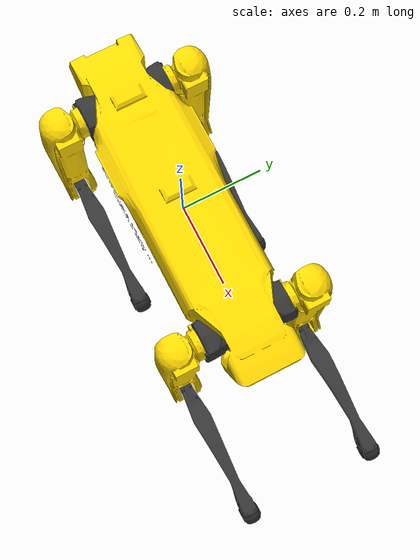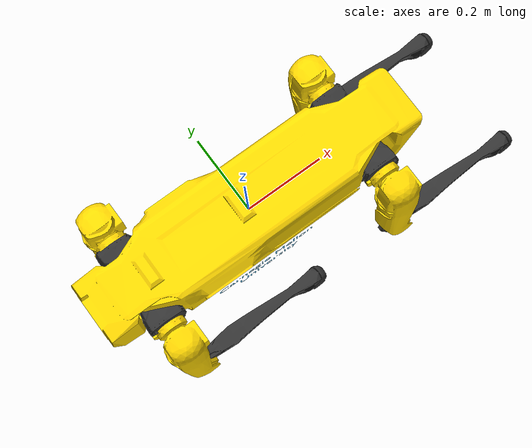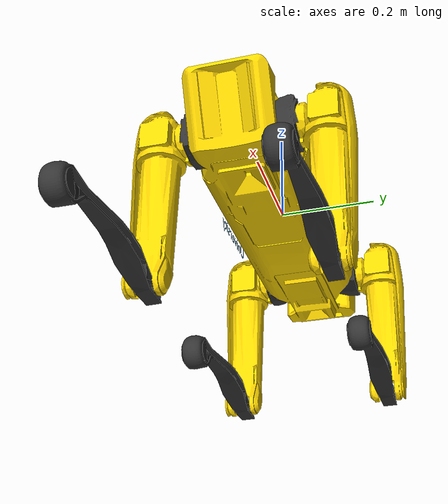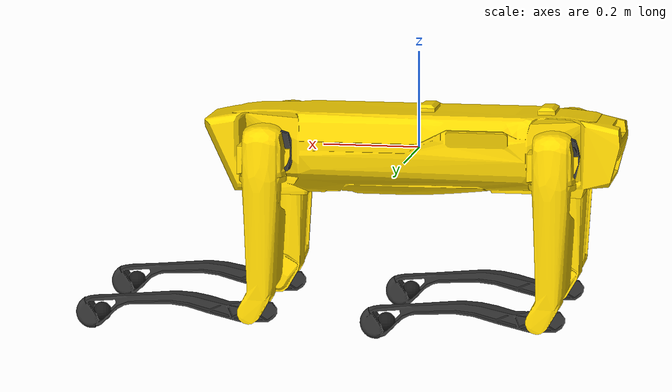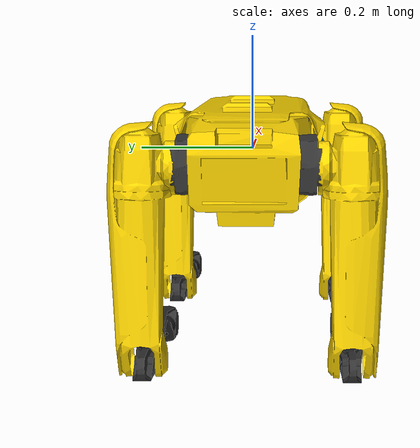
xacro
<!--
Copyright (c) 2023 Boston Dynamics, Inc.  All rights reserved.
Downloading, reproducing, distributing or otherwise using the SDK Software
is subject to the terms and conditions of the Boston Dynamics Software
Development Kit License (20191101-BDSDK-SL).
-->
<?xml version="1.0" encoding="utf-8"?>
<robot name="spot" xmlns:xacro="http://www.ros.org/wiki/xacro">
  <!-- Define materials -->
  <material name="gray">
    <color rgba="0.2 0.2 0.2 1.0"/>
  </material>
  <material name="gold">
    <color rgba="1 0.8431 0 1"/>
  </material>
  <material name="darkgray">
    <color rgba="0.1 0.1 0.1 1.0"/>
  </material>
  <material name="silver">
    <color rgba="0.3 0.3 0.3 1.0"/>
  </material>
  <material name="red">
    <color rgba="0.8 0.0 0.2 1.0"/>
  </material>
  <material name="scots-rose">
    <color rgba="0.937 0.2 0.251 1.0"/>
  </material>
  <!-- Robot Base Link -->
  <link name="body">
    <visual>
      <geometry>
        <mesh filename="package://spot_description/models/spot/meshes/base_link_0_geom_visual_mesh.stl"/>
      </geometry>
      <material name="gold" />
    </visual>
    <collision>
      <origin xyz="0.0 0.0 -0.015"/>
      <geometry>
        <box size="0.85 0.24 0.18"/>
      </geometry>
    </collision>
    <inertial>
      <origin xyz="0.006394396536052227 -9.812158532440662e-05 0.0009113792330026627"/>
      <mass value="32.86"/>
      <inertia ixx="0.13143999874591827" ixy="0.0" ixz="0.0" iyy="0.13143999874591827" iyz="0.0" izz="0.13143999874591827"/>
    </inertial>
  </link>
  <gazebo reference="body">
    <gravity>true</gravity>
    <sensor name="imu_sensor" type="imu">
      <always_on>true</always_on>
      <visualize>true</visualize>
      <topic>__default_topic_</topic>
      <plugin filename="libgazebo_ros_imu_sensor.so" name="imu_plugin">
        <topicName>imu</topicName>
        <bodyName>body</bodyName>
        <updateRateHZ>500.0</updateRateHZ>
        <gaussianNoise>0.0</gaussianNoise>
        <xyzOffset>0 0 0</xyzOffset>
        <rpyOffset>0 0 0</rpyOffset>
        <frameName>body</frameName>
        <initialOrientationAsReference>true</initialOrientationAsReference>
      </plugin>
      <pose>0 0 0 0 0 0</pose>
    </sensor>
  </gazebo>

  <!-- Hip Links -->
  <link name="hip0">
    <visual>
      <geometry>
        <mesh filename="package://spot_description/models/spot/meshes/fl_hip_0_geom_visual_mesh.stl"/>
      </geometry>
      <material name="gray" />
    </visual>
    <inertial>
      <origin xyz="-0.005374345928430557 0.012841847725212574 9.875232353806496e-05"/>
      <inertia ixx="0.0021147398873455382" ixy="0.0" ixz="0.0" iyy="0.0018129577956607131" iyz="0.0" izz="0.002265435737304666"/>
      <mass value="1.68"/>
    </inertial>
  </link>
  <gazebo reference="hip0">
    <gravity>true</gravity>
    <material>Gazebo/Gray</material>
  </gazebo>

  <joint name="8" type="revolute">
    <parent link="body"/>
    <child link="hip0"/>
    <origin xyz="0.29785 0.05500 0.00000" rpy="0 0 0"/>
    <axis xyz="1 0 0"/>
    <limit effort="45" velocity="100.00" lower="-0.78539816339744827899" upper="0.78539816339744827899"/>
    <dynamics damping="0" friction="0"/>
  </joint>
  <transmission name="transmission_8">
    <type>transmission_interface/SimpleTransmission</type>
    <joint name="8">
      <hardwareInterface>hardware_interface/EffortJointInterface</hardwareInterface>
    </joint>
    <actuator name="motor_8">
      <hardwareInterface>EffortJointInterface</hardwareInterface>
      <mechanicalReduction>1</mechanicalReduction>
    </actuator>
  </transmission>

  <link name="upper0">
    <visual>
      <geometry>
        <mesh filename="package://spot_description/models/spot/meshes/l_uleg_0_geom_visual_mesh.stl"/>
      </geometry>
      <material name="gold"/>
    </visual>
    <collision>
      <origin xyz="0.0 0.0 -0.115"/>
      <geometry>
        <cylinder radius="0.045" length="0.35"/>
      </geometry>
    </collision>
    <inertial>
      <origin xyz="0.005142373498529196 -0.0024323679972440004 -0.12100915610790253"/>
      <inertia ixx="0.02755964961185679" ixy="0.0" ixz="0.0" iyy="0.027354914287651046" iyz="0.0" izz="0.002848145546743553"/>
      <mass value="2.34"/>
    </inertial>
  </link>
  <gazebo reference="upper0">
    <gravity>true</gravity>
    <material>Gazebo/Gold</material>
  </gazebo>

  <joint name="0" type="revolute">
    <parent link="hip0"/>
    <child link="upper0"/>
    <origin xyz="0.0 0.11080 0.0" rpy="0 0 0"/>
    <axis xyz="0 1 0"/>
    <limit effort="45" velocity="100.00" lower="-0.89884456477707963539" upper="2.2951079663725435509"/>
    <dynamics damping="0" friction="0"/>
  </joint>
  <transmission name="transmission_0">
    <type>transmission_interface/SimpleTransmission</type>
    <joint name="0">
      <hardwareInterface>hardware_interface/EffortJointInterface</hardwareInterface>
    </joint>
    <actuator name="motor_0">
      <hardwareInterface>EffortJointInterface</hardwareInterface>
      <mechanicalReduction>1</mechanicalReduction>
    </actuator>
  </transmission>

  <link name="lower0">
    <visual>
      <geometry>
        <mesh filename="package://spot_description/models/spot/meshes/lleg_0_geom_visual_mesh.stl"/>
      </geometry>
      <material name="gray" />
    </visual>
    <collision>
      <origin rpy="1.5708 0.0 0.0" xyz="0.0 0.0 -0.33532"/>
      <geometry>
        <cylinder radius="0.033" length="0.03"/>
      </geometry>
    </collision>
    <inertial>
      <origin xyz="0.00225794012658298 4.607596201822162e-05 -0.1800822913646698"/>
      <inertia ixx="0.003999022654901177" ixy="0.0" ixz="0.0" iyy="0.0040503157598010785" iyz="0.0" izz="0.0001493402097647426"/>
      <mass value="0.35"/>
    </inertial>
  </link>
  <gazebo reference="lower0">
    <gravity>true</gravity>
    <material>Gazebo/Black</material>
  </gazebo>

  <joint name="1" type="revolute">
    <parent link="upper0"/>
    <child link="lower0"/>
    <origin xyz="0.025 0.000 -0.3200" rpy="0 0 0"/>
    <axis xyz="0 1 0"/>
    <limit effort="115" velocity="100.00" lower="-2.7929" upper="-0.254402"/>
    <dynamics damping="0" friction="0"/>
  </joint>
  <transmission name="transmission_1">
    <type>transmission_interface/SimpleTransmission</type>
    <joint name="1">
      <hardwareInterface>hardware_interface/EffortJointInterface</hardwareInterface>
    </joint>
    <actuator name="motor_1">
      <hardwareInterface>EffortJointInterface</hardwareInterface>
      <mechanicalReduction>1</mechanicalReduction>
    </actuator>
  </transmission>
  <!-- Toe -->
  <link
    name="toe0">
    <inertial>
      <origin
        xyz="0 0 0"
        rpy="0 0 0" />
      <mass
        value="0.015" />
      <inertia
        ixx="9.6e-06"
        ixy="0"
        ixz="0"
        iyy="9.6e-06"
        iyz="0"
        izz="9.6e-06" />
    </inertial>
    <visual>
      <origin
        xyz="0 0 0"
        rpy="0 0 0" />
      <geometry>
        <sphere radius="0.02"/>
      </geometry>
      <material name="darkgray"/>
    </visual>
    <collision>
      <origin rpy="0 0 0" xyz="0 0 0" />
      <geometry>
        <sphere radius="0.02" />
      </geometry>
    </collision>
  </link>
  <joint
    name="jtoe0"
    type="fixed" dont_collapse="true">
    <origin
      xyz="0 0 -0.31532"
      rpy="0 0 0" />
    <parent
      link="lower0" />
    <child
      link="toe0" />
    <axis
      xyz="0 0 0" />
  </joint>

  <link name="hip1">
    <visual>
      <geometry>
        <mesh filename="package://spot_description/models/spot/meshes/hl_hip_0_geom_visual_mesh.stl"/>
      </geometry>
      <material name="gray" />
    </visual>
    <inertial>
      <origin xyz="0.005374345928430557 0.012841847725212574 -9.875232353806496e-05"/>
      <inertia ixx="0.0021147398873455382" ixy="0.0" ixz="0.0" iyy="0.0018129577956607131" iyz="0.0" izz="0.002265435737304666"/>
      <mass value="1.68"/>
    </inertial>
  </link>
  <gazebo reference="hip1">
    <gravity>true</gravity>
    <material>Gazebo/Gray</material>
  </gazebo>

  <joint name="9" type="revolute">
    <parent link="body"/>
    <child link="hip1"/>
    <origin xyz="-0.29785 0.05500 0.00000" rpy="0 0 0"/>
    <axis xyz="1 0 0"/>
    <limit effort="45" velocity="100.00" lower="-0.78539816339744827899" upper="0.78539816339744827899"/>
    <dynamics damping="0" friction="0"/>
  </joint>
  <transmission name="transmission_9">
    <type>transmission_interface/SimpleTransmission</type>
    <joint name="9">
      <hardwareInterface>hardware_interface/EffortJointInterface</hardwareInterface>
    </joint>
    <actuator name="motor_9">
      <hardwareInterface>EffortJointInterface</hardwareInterface>
      <mechanicalReduction>1</mechanicalReduction>
    </actuator>
  </transmission>

  <link name="upper1">
    <visual>
      <geometry>
        <mesh filename="package://spot_description/models/spot/meshes/l_uleg_0_geom_visual_mesh.stl"/>
      </geometry>
      <material name="gold" />
    </visual>
    <collision>
      <origin xyz="0.0 0.0 -0.115"/>
      <geometry>
        <cylinder radius="0.045" length="0.35"/>
      </geometry>
    </collision>
    <inertial>
      <origin xyz="0.005142373498529196 -0.0024323679972440004 -0.12100915610790253"/>
      <inertia ixx="0.02755964961185679" ixy="0.0" ixz="0.0" iyy="0.027354914287651046" iyz="0.0" izz="0.002848145546743553"/>
      <mass value="2.34"/>
    </inertial>
  </link>
  <gazebo reference="upper1">
    <gravity>true</gravity>
    <material>Gazebo/Gold</material>
  </gazebo>
  <joint name="2" type="revolute">
    <parent link="hip1"/>
    <child link="upper1"/>
    <origin xyz="0.0 0.11080 0.0" rpy="0 0 0"/>
    <axis xyz="0 1 0"/>
    <limit effort="45" velocity="100.00" lower="-0.89884456477707963539" upper="2.2951079663725435509"/>
    <dynamics damping="0" friction="0"/>
  </joint>
  <transmission name="transmission_2">
    <type>transmission_interface/SimpleTransmission</type>
    <joint name="2">
      <hardwareInterface>hardware_interface/EffortJointInterface</hardwareInterface>
    </joint>
    <actuator name="motor_2">
      <hardwareInterface>EffortJointInterface</hardwareInterface>
      <mechanicalReduction>1</mechanicalReduction>
    </actuator>
  </transmission>

  <link name="lower1">
    <visual>
      <geometry>
        <mesh filename="package://spot_description/models/spot/meshes/lleg_0_geom_visual_mesh.stl"/>
      </geometry>
      <material name="gray" />
    </visual>
    <collision>
      <origin rpy="1.5708 0.0 0.0" xyz="0.0 0.0 -0.33532"/>
      <geometry>
        <cylinder radius="0.033" length="0.03"/>
      </geometry>
    </collision>
    <inertial>
      <origin xyz="0.00225794012658298 4.607596201822162e-05 -0.1800822913646698"/>
      <inertia ixx="0.003999022654901177" ixy="0.0" ixz="0.0" iyy="0.0040503157598010785" iyz="0.0" izz="0.0001493402097647426"/>
      <mass value="0.35"/>
    </inertial>
  </link>
  <gazebo reference="lower1">
    <gravity>true</gravity>
    <material>Gazebo/Black</material>
  </gazebo>
  <joint name="3" type="revolute">
    <parent link="upper1"/>
    <child link="lower1"/>
    <origin xyz="0.025 0.000 -0.3200" rpy="0 0 0"/>
    <axis xyz="0 1 0"/>
    <limit effort="115" velocity="100.00" lower="-2.7929" upper="-0.247067"/>
    <dynamics damping="0" friction="0"/>
  </joint>
  <transmission name="transmission_3">
    <type>transmission_interface/SimpleTransmission</type>
    <joint name="3">
      <hardwareInterface>hardware_interface/EffortJointInterface</hardwareInterface>
    </joint>
    <actuator name="motor_3">
      <hardwareInterface>EffortJointInterface</hardwareInterface>
      <mechanicalReduction>1</mechanicalReduction>
    </actuator>
  </transmission>

  <!-- Toe -->
  <link
    name="toe1">
    <inertial>
      <origin
        xyz="0 0 0"
        rpy="0 0 0" />
      <mass
        value="0.015" />
      <inertia
        ixx="9.6e-06"
        ixy="0"
        ixz="0"
        iyy="9.6e-06"
        iyz="0"
        izz="9.6e-06" />
    </inertial>
    <visual>
      <origin
        xyz="0 0 0"
        rpy="0 0 0" />
      <geometry>
        <sphere radius="0.02"/>
      </geometry>
      <material name="darkgray"/>
    </visual>
    <collision>
      <origin rpy="0 0 0" xyz="0 0 0" />
      <geometry>
        <sphere radius="0.02" />
      </geometry>
    </collision>
  </link>
  <joint
    name="jtoe1"
    type="fixed" dont_collapse="true">
    <origin
      xyz="0 0 -0.31532"
      rpy="0 0 0" />
    <parent
      link="lower1" />
    <child
      link="toe1" />
    <axis
      xyz="0 0 0" />
  </joint>

  <link name="hip2">
    <visual>
      <geometry>
        <mesh filename="package://spot_description/models/spot/meshes/fr_hip_0_geom_visual_mesh.stl"/>
      </geometry>
      <material name="gray" />
    </visual>
    <inertial>
      <origin xyz="-0.005374345928430557 -0.012841847725212574 -9.875232353806496e-05"/>
      <inertia ixx="0.0021147398873455382" ixy="0.0" ixz="0.0" iyy="0.0018129577956607131" iyz="0.0" izz="0.002265435737304666"/>
      <mass value="1.68"/>
    </inertial>
  </link>
  <gazebo reference="hip2">
    <gravity>true</gravity>
    <material>Gazebo/Gray</material>
  </gazebo>
  <joint name="10" type="revolute">
    <parent link="body"/>
    <child link="hip2"/>
    <origin xyz="0.29785 -0.05500 0.00000" rpy="0 0 0"/>
    <axis xyz="1 0 0"/>
    <limit effort="45" velocity="100.00" lower="-0.78539816339744827899" upper="0.78539816339744827899"/>
    <dynamics damping="0" friction="0"/>
  </joint>
  <transmission name="transmission_10">
    <type>transmission_interface/SimpleTransmission</type>
    <joint name="10">
      <hardwareInterface>hardware_interface/EffortJointInterface</hardwareInterface>
    </joint>
    <actuator name="motor_10">
      <hardwareInterface>EffortJointInterface</hardwareInterface>
      <mechanicalReduction>1</mechanicalReduction>
    </actuator>
  </transmission>

  <link name="upper2">
    <visual>
      <geometry>
        <mesh filename="package://spot_description/models/spot/meshes/r_uleg_0_geom_visual_mesh.stl"/>
      </geometry>
      <material name="gold" />
    </visual>
    <collision>
      <origin xyz="0.0 0.0 -0.115"/>
      <geometry>
        <cylinder radius="0.045" length="0.35"/>
      </geometry>
    </collision>
    <inertial>
      <origin xyz="0.005142373498529196 0.0024323677644133568 -0.12100915610790253"/>
      <inertia ixx="0.02755964678927691" ixy="0.0" ixz="0.0" iyy="0.02735491706466737" iyz="0.0" izz="0.0028481453594764797"/>
      <mass value="2.34"/>
    </inertial>
  </link>
  <gazebo reference="upper2">
    <gravity>true</gravity>
    <material>Gazebo/Gold</material>
  </gazebo>
  <joint name="4" type="revolute">
    <parent link="hip2"/>
    <child link="upper2"/>
    <origin xyz="0.0 -0.11080 0.0" rpy="0 0 0"/>
    <axis xyz="0 1 0"/>
    <limit effort="45" velocity="100.00" lower="-0.89884456477707963539" upper="2.2951079663725435509"/>
    <dynamics damping="0" friction="0"/>
  </joint>
  <transmission name="transmission_4">
    <type>transmission_interface/SimpleTransmission</type>
    <joint name="4">
      <hardwareInterface>hardware_interface/EffortJointInterface</hardwareInterface>
    </joint>
    <actuator name="motor_4">
      <hardwareInterface>EffortJointInterface</hardwareInterface>
      <mechanicalReduction>1</mechanicalReduction>
    </actuator>
  </transmission>

  <link name="lower2">
    <visual>
      <geometry>
        <mesh filename="package://spot_description/models/spot/meshes/lleg_0_geom_visual_mesh.stl"/>
      </geometry>
      <material name="gray" />
    </visual>
    <collision>
      <origin rpy="1.5708 0.0 0.0" xyz="0.0 0.0 -0.33532"/>
      <geometry>
        <cylinder radius="0.033" length="0.03"/>
      </geometry>
    </collision>
    <inertial>
      <origin xyz="0.00225794012658298 4.607596201822162e-05 -0.1800822913646698"/>
      <inertia ixx="0.003999022654901177" ixy="0.0" ixz="0.0" iyy="0.0040503157598010785" iyz="0.0" izz="0.0001493402097647426"/>
      <mass value="0.35"/>
    </inertial>
  </link>
  <gazebo reference="lower2">
    <gravity>true</gravity>
    <material>Gazebo/Black</material>
  </gazebo>
  <joint name="5" type="revolute">
    <parent link="upper2"/>
    <child link="lower2"/>
    <origin xyz="0.025 0.000 -0.3200" rpy="0 0 0"/>
    <axis xyz="0 1 0"/>
    <limit effort="115" velocity="100.00" lower="-2.7929" upper="-0.255648"/>
    <dynamics damping="0" friction="0"/>
  </joint>
  <transmission name="transmission_5">
    <type>transmission_interface/SimpleTransmission</type>
    <joint name="5">
      <hardwareInterface>hardware_interface/EffortJointInterface</hardwareInterface>
    </joint>
    <actuator name="motor_5">
      <hardwareInterface>EffortJointInterface</hardwareInterface>
      <mechanicalReduction>1</mechanicalReduction>
    </actuator>
  </transmission>

  <!-- Toe -->
  <link
    name="toe2">
    <inertial>
      <origin
        xyz="0 0 0"
        rpy="0 0 0" />
      <mass
        value="0.015" />
      <inertia
        ixx="9.6e-06"
        ixy="0"
        ixz="0"
        iyy="9.6e-06"
        iyz="0"
        izz="9.6e-06" />
    </inertial>
    <visual>
      <origin
        xyz="0 0 0"
        rpy="0 0 0" />
      <geometry>
        <sphere radius="0.02"/>
      </geometry>
      <material name="darkgray"/>
    </visual>
    <collision>
      <origin rpy="0 0 0" xyz="0 0 0" />
      <geometry>
        <sphere radius="0.02" />
      </geometry>
    </collision>
  </link>
  <joint
    name="jtoe2"
    type="fixed" dont_collapse="true">
    <origin
      xyz="0 0 -0.31532"
      rpy="0 0 0" />
    <parent
      link="lower2" />
    <child
      link="toe2" />
    <axis
      xyz="0 0 0" />
  </joint>

  <link name="hip3">
    <visual>
      <geometry>
        <mesh filename="package://spot_description/models/spot/meshes/hr_hip_0_geom_visual_mesh.stl"/>
      </geometry>
      <material name="gray" />
    </visual>
    <inertial>
      <origin xyz="0.005374345928430557 -0.012841847725212574 9.875232353806496e-05"/>
      <inertia ixx="0.0021147398873455382" ixy="0.0" ixz="0.0" iyy="0.0018129577956607131" iyz="0.0" izz="0.002265435737304666"/>
      <mass value="1.68"/>
    </inertial>
  </link>
  <gazebo reference="hip3">
    <gravity>true</gravity>
    <material>Gazebo/Gray</material>
  </gazebo>

  <joint name="11" type="revolute">
    <parent link="body"/>
    <child link="hip3"/>
    <origin xyz="-0.29785 -0.05500 0.00000" rpy="0 0 0"/>
    <axis xyz="1 0 0"/>
    <limit effort="45" velocity="100.00" lower="-0.78539816339744827899" upper="0.78539816339744827899"/>
    <dynamics damping="0" friction="0"/>
  </joint>
  <transmission name="transmission_11">
    <type>transmission_interface/SimpleTransmission</type>
    <joint name="11">
      <hardwareInterface>hardware_interface/EffortJointInterface</hardwareInterface>
    </joint>
    <actuator name="motor_11">
      <hardwareInterface>EffortJointInterface</hardwareInterface>
      <mechanicalReduction>1</mechanicalReduction>
    </actuator>
  </transmission>

  <link name="upper3">
    <visual>
      <geometry>
        <mesh filename="package://spot_description/models/spot/meshes/r_uleg_0_geom_visual_mesh.stl"/>
      </geometry>
      <material name="gold" />
    </visual>
    <collision>
      <origin xyz="0.0 0.0 -0.115"/>
      <geometry>
        <cylinder radius="0.045" length="0.35"/>
      </geometry>
    </collision>
    <inertial>
      <origin xyz="0.005142373498529196 0.0024323677644133568 -0.12100915610790253"/>
      <inertia ixx="0.02755964678927691" ixy="0.0" ixz="0.0" iyy="0.02735491706466737" iyz="0.0" izz="0.0028481453594764797"/>
      <mass value="2.34"/>
    </inertial>
  </link>
  <gazebo reference="upper3">
    <gravity>true</gravity>
    <material>Gazebo/Gold</material>
  </gazebo>

  <joint name="6" type="revolute">
    <parent link="hip3"/>
    <child link="upper3"/>
    <origin xyz="0.0 -0.11080 0.0" rpy="0 0 0"/>
    <axis xyz="0 1 0"/>
    <limit effort="45" velocity="100.00" lower="-0.89884456477707963539" upper="2.2951079663725435509"/>
    <dynamics damping="0" friction="0"/>
  </joint>
  <transmission name="transmission_6">
    <type>transmission_interface/SimpleTransmission</type>
    <joint name="6">
      <hardwareInterface>hardware_interface/EffortJointInterface</hardwareInterface>
    </joint>
    <actuator name="motor_6">
      <hardwareInterface>EffortJointInterface</hardwareInterface>
      <mechanicalReduction>1</mechanicalReduction>
    </actuator>
  </transmission>

  <link name="lower3">
    <visual>
      <geometry>
        <mesh filename="package://spot_description/models/spot/meshes/lleg_0_geom_visual_mesh.stl"/>
      </geometry>
      <material name="gray" />
    </visual>
    <collision>
      <origin rpy="1.5708 0.0 0.0" xyz="0.0 0.0 -0.33532"/>
      <geometry>
        <cylinder radius="0.033" length="0.03"/>
      </geometry>
    </collision>
    <inertial>
      <origin xyz="0.00225794012658298 4.607596201822162e-05 -0.1800822913646698"/>
      <inertia ixx="0.003999022654901177" ixy="0.0" ixz="0.0" iyy="0.0040503157598010785" iyz="0.0" izz="0.0001493402097647426"/>
      <mass value="0.35"/>
    </inertial>
  </link>
  <gazebo reference="lower3">
    <gravity>true</gravity>
    <material>Gazebo/Black</material>
  </gazebo>
  <joint name="7" type="revolute">
    <parent link="upper3"/>
    <child link="lower3"/>
    <origin xyz="0.025 0.000 -0.3200" rpy="0 0 0"/>
    <axis xyz="0 1 0"/>
    <limit effort="115" velocity="100.00" lower="-2.7929" upper="-0.247067"/>
    <dynamics damping="0" friction="0"/>
  </joint>
  <transmission name="transmission_7">
    <type>transmission_interface/SimpleTransmission</type>
    <joint name="7">
      <hardwareInterface>hardware_interface/EffortJointInterface</hardwareInterface>
    </joint>
    <actuator name="motor_7">
      <hardwareInterface>EffortJointInterface</hardwareInterface>
      <mechanicalReduction>1</mechanicalReduction>
    </actuator>
  </transmission>

  <!-- Toe -->
  <link
    name="toe3">
    <inertial>
      <origin
        xyz="0 0 0"
        rpy="0 0 0" />
      <mass
        value="0.015" />
      <inertia
        ixx="9.6e-06"
        ixy="0"
        ixz="0"
        iyy="9.6e-06"
        iyz="0"
        izz="9.6e-06" />
    </inertial>
    <visual>
      <origin
        xyz="0 0 0"
        rpy="0 0 0" />
      <geometry>
        <sphere radius="0.02"/>
      </geometry>
      <material name="darkgray"/>
    </visual>
    <collision>
      <origin rpy="0 0 0" xyz="0 0 0" />
      <geometry>
        <sphere radius="0.02" />
      </geometry>
    </collision>
  </link>
  <joint
    name="jtoe3"
    type="fixed" dont_collapse="true">
    <origin
      xyz="0 0 -0.31532"
      rpy="0 0 0" />
    <parent
      link="lower3" />
    <child
      link="toe3" />
    <axis
      xyz="0 0 0" />
  </joint>

  <ros2_control name="GazeboSimSystem" type="system">
    <hardware>
      <plugin>gz_ros2_control/GazeboSimSystem</plugin>
    </hardware>
    <joint name="0">
      <command_interface name="effort" />
      <state_interface name="velocity" />
      <state_interface name="position" />
    </joint>
    <joint name="1">
      <command_interface name="effort" />
      <state_interface name="velocity" />
      <state_interface name="position" />
    </joint>
    <joint name="2">
      <command_interface name="effort" />
      <state_interface name="velocity" />
      <state_interface name="position" />
    </joint>
    <joint name="3">
      <command_interface name="effort" />
      <state_interface name="velocity" />
      <state_interface name="position" />
    </joint>
    <joint name="4">
      <command_interface name="effort" />
      <state_interface name="velocity" />
      <state_interface name="position" />
    </joint>
    <joint name="5">
      <command_interface name="effort" />
      <state_interface name="velocity" />
      <state_interface name="position" />
    </joint>
    <joint name="6">
      <command_interface name="effort" />
      <state_interface name="velocity" />
      <state_interface name="position" />
    </joint>
    <joint name="7">
      <command_interface name="effort" />
      <state_interface name="velocity" />
      <state_interface name="position" />
    </joint>
    <joint name="8">
      <command_interface name="effort" />
      <state_interface name="velocity" />
      <state_interface name="position" />
    </joint>
    <joint name="9">
      <command_interface name="effort" />
      <state_interface name="velocity" />
      <state_interface name="position" />
    </joint>
    <joint name="10">
      <command_interface name="effort" />
      <state_interface name="velocity" />
      <state_interface name="position" />
    </joint>
    <joint name="11">
      <command_interface name="effort" />
      <state_interface name="velocity" />
      <state_interface name="position" />
    </joint>
  </ros2_control>

  <link name="cmu_text">
    <visual>
      <origin xyz="0 0 0" rpy="0 0 0" />
      <geometry>
        <mesh filename="package://objects_description/models/cmu_text/meshes/Spirit40_CMU_Text_transformed.stl" scale="1.3 1 1.3" />
      </geometry>
    </visual>
    <inertial>
      <mass value="0.0001" />
      <inertia ixx="1e-08" ixy="0" ixz="0" iyy="1e-08" iyz="0" izz="1e-08" />
    </inertial>
  </link>
  <joint name="cmu_text_joint" type="fixed">
    <parent link="body" />
    <child link="cmu_text" />
    <origin xyz="0 0 -0.005" rpy="0 0 0" />
  </joint>

</robot>
